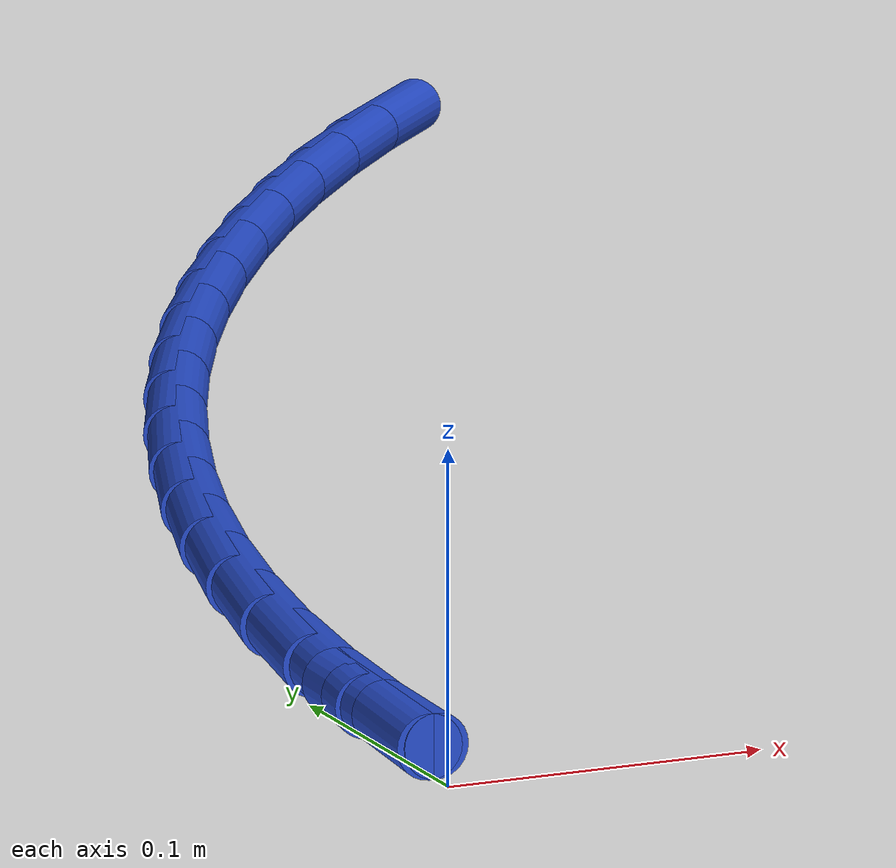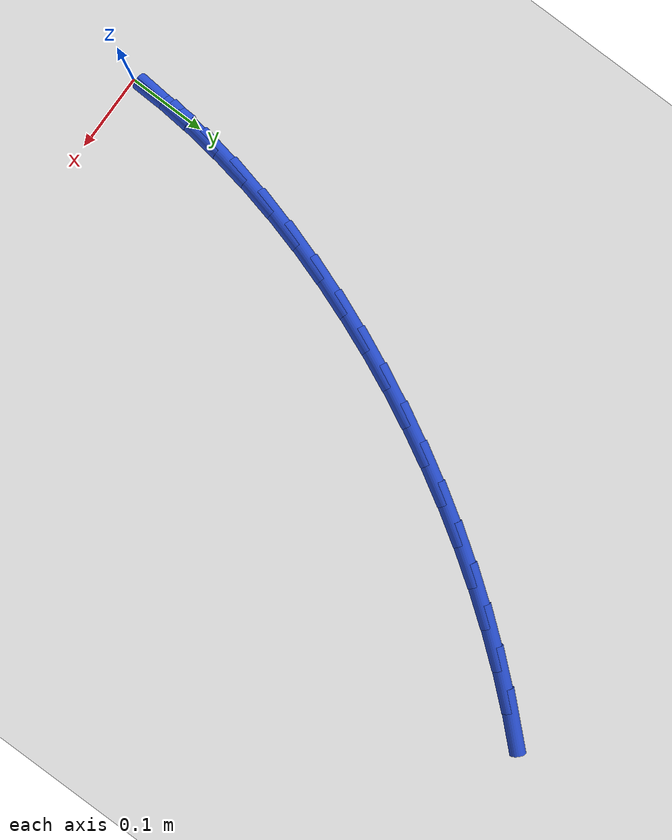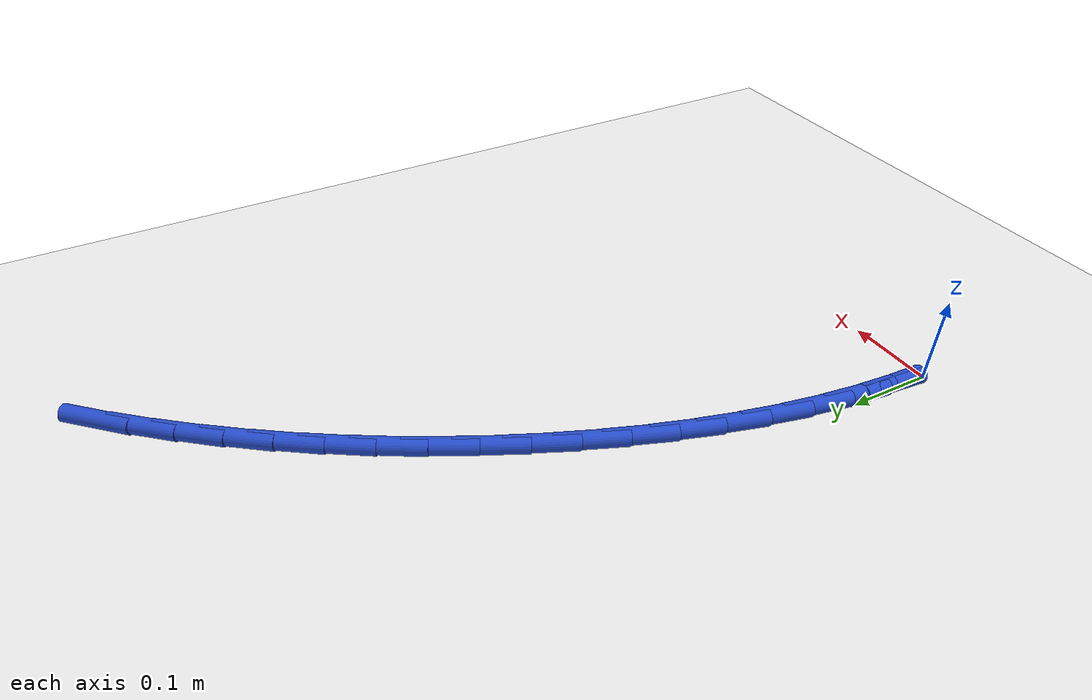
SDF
<sdf version="1.6">
 <world name="default">
  <model name="ground_plane">
   <static>1</static>
   <link name="link">
    <collision name="collision">
     <geometry><plane><normal>0 0 1</normal><size>100 100</size></plane></geometry>
     <surface><friction><ode><mu>100</mu><mu2>50</mu2></ode></friction></surface>
    </collision>
    <visual name="visual">
     <cast_shadows>0</cast_shadows>
     <geometry><plane><normal>0 0 1</normal><size>100 100</size></plane></geometry>
     <material>
      <script><uri>file://media/materials/scripts/gazebo.material</uri><name>Gazebo/WhiteGlow</name></script>
     </material>
    </visual>
   </link>
  </model>
  <model name="line">
   <link name="link_1">
    <pose>0.0015002505944763317 0.04877072796237831 0.01 0 1.57 1.4877429851813693</pose>
    <collision name="collision">
     <geometry><cylinder><radius>0.01</radius><length>0.08</length></cylinder></geometry>
    </collision>
    <visual name="visual">
     <material>
      <script><name>Gazebo/Blue</name><uri>file://media/materials/scripts/gazebo.material</uri></script>
     </material>
     <geometry><cylinder><radius>0.01</radius><length>0.08</length></cylinder></geometry>
    </visual>
   </link>
   <link name="link_2">
    <pose>0.005549995147745127 0.09741932740024425 0.01 0 1.57 1.437531070462646</pose>
    <collision name="collision">
     <geometry><cylinder><radius>0.01</radius><length>0.08</length></cylinder></geometry>
    </collision>
    <visual name="visual">
     <material>
      <script><name>Gazebo/Blue</name><uri>file://media/materials/scripts/gazebo.material</uri></script>
     </material>
     <geometry><cylinder><radius>0.01</radius><length>0.08</length></cylinder></geometry>
    </visual>
   </link>
   <link name="link_3">
    <pose>0.012051817081749808 0.14591873739414 0.01 0 1.57 1.3895318751148384</pose>
    <collision name="collision">
     <geometry><cylinder><radius>0.01</radius><length>0.08</length></cylinder></geometry>
    </collision>
    <visual name="visual">
     <material>
      <script><name>Gazebo/Blue</name><uri>file://media/materials/scripts/gazebo.material</uri></script>
     </material>
     <geometry><cylinder><radius>0.01</radius><length>0.08</length></cylinder></geometry>
    </visual>
   </link>
   <link name="link_4">
    <pose>0.02090829981843374 0.19424189702460748 0.01 0 1.57 1.3438170179797084</pose>
    <collision name="collision">
     <geometry><cylinder><radius>0.01</radius><length>0.08</length></cylinder></geometry>
    </collision>
    <visual name="visual">
     <material>
      <script><name>Gazebo/Blue</name><uri>file://media/materials/scripts/gazebo.material</uri></script>
     </material>
     <geometry><cylinder><radius>0.01</radius><length>0.08</length></cylinder></geometry>
    </visual>
   </link>
   <link name="link_5">
    <pose>0.032022026779740295 0.24236174537218888 0.01 0 1.57 1.3004132527795733</pose>
    <collision name="collision">
     <geometry><cylinder><radius>0.01</radius><length>0.08</length></cylinder></geometry>
    </collision>
    <visual name="visual">
     <material>
      <script><name>Gazebo/Blue</name><uri>file://media/materials/scripts/gazebo.material</uri></script>
     </material>
     <geometry><cylinder><radius>0.01</radius><length>0.08</length></cylinder></geometry>
    </visual>
   </link>
   <link name="link_6">
    <pose>0.04529558138761289 0.29025122151742644 0.01 0 1.57 1.2593097391518369</pose>
    <collision name="collision">
     <geometry><cylinder><radius>0.01</radius><length>0.08</length></cylinder></geometry>
    </collision>
    <visual name="visual">
     <material>
      <script><name>Gazebo/Blue</name><uri>file://media/materials/scripts/gazebo.material</uri></script>
     </material>
     <geometry><cylinder><radius>0.01</radius><length>0.08</length></cylinder></geometry>
    </visual>
   </link>
   <link name="link_7">
    <pose>0.06063154706399483 0.337883264540862 0.01 0 1.57 1.2204654533270505</pose>
    <collision name="collision">
     <geometry><cylinder><radius>0.01</radius><length>0.08</length></cylinder></geometry>
    </collision>
    <visual name="visual">
     <material>
      <script><name>Gazebo/Blue</name><uri>file://media/materials/scripts/gazebo.material</uri></script>
     </material>
     <geometry><cylinder><radius>0.01</radius><length>0.08</length></cylinder></geometry>
    </visual>
   </link>
   <link name="link_8">
    <pose>0.07793250723082955 0.3852308135230379 0.01 0 1.57 1.1837741862525684</pose>
    <collision name="collision">
     <geometry><cylinder><radius>0.01</radius><length>0.08</length></cylinder></geometry>
    </collision>
    <visual name="visual">
     <material>
      <script><name>Gazebo/Blue</name><uri>file://media/materials/scripts/gazebo.material</uri></script>
     </material>
     <geometry><cylinder><radius>0.01</radius><length>0.08</length></cylinder></geometry>
    </visual>
   </link>
   <link name="link_9">
    <pose>0.09710231904066233 0.4322642771726343 0.01 0 1.57 1.1483401596776046</pose>
    <collision name="collision">
     <geometry><cylinder><radius>0.01</radius><length>0.08</length></cylinder></geometry>
    </collision>
    <visual name="visual">
     <material>
      <script><name>Gazebo/Blue</name><uri>file://media/materials/scripts/gazebo.material</uri></script>
     </material>
     <geometry><cylinder><radius>0.01</radius><length>0.08</length></cylinder></geometry>
    </visual>
   </link>
   <link name="link_10">
    <pose>0.11806890477209978 0.47890625682230775 0.01 0 1.57 1.1132798120705825</pose>
    <collision name="collision">
     <geometry><cylinder><radius>0.01</radius><length>0.08</length></cylinder></geometry>
    </collision>
    <visual name="visual">
     <material>
      <script><name>Gazebo/Blue</name><uri>file://media/materials/scripts/gazebo.material</uri></script>
     </material>
     <geometry><cylinder><radius>0.01</radius><length>0.08</length></cylinder></geometry>
    </visual>
   </link>
   <link name="link_11">
    <pose>0.14078166126628136 0.5250366927987722 0.01 0 1.57 1.0783809923927883</pose>
    <collision name="collision">
     <geometry><cylinder><radius>0.01</radius><length>0.08</length></cylinder></geometry>
    </collision>
    <visual name="visual">
     <material>
      <script><name>Gazebo/Blue</name><uri>file://media/materials/scripts/gazebo.material</uri></script>
     </material>
     <geometry><cylinder><radius>0.01</radius><length>0.08</length></cylinder></geometry>
    </visual>
   </link>
   <link name="link_12">
    <pose>0.16519073887445251 0.5705340285181951 0.01 0 1.57 1.0434617121505405</pose>
    <collision name="collision">
     <geometry><cylinder><radius>0.01</radius><length>0.08</length></cylinder></geometry>
    </collision>
    <visual name="visual">
     <material>
      <script><name>Gazebo/Blue</name><uri>file://media/materials/scripts/gazebo.material</uri></script>
     </material>
     <geometry><cylinder><radius>0.01</radius><length>0.08</length></cylinder></geometry>
    </visual>
   </link>
   <link name="link_13">
    <pose>0.19124628794785878 0.6152767073967439 0.01 0 1.57 1.0083436608396281</pose>
    <collision name="collision">
     <geometry><cylinder><radius>0.01</radius><length>0.08</length></cylinder></geometry>
    </collision>
    <visual name="visual">
     <material>
      <script><name>Gazebo/Blue</name><uri>file://media/materials/scripts/gazebo.material</uri></script>
     </material>
     <geometry><cylinder><radius>0.01</radius><length>0.08</length></cylinder></geometry>
    </visual>
   </link>
   <link name="link_14">
    <pose>0.21889845883774575 0.6591431728505865 0.01 0 1.57 0.9728507419246204</pose>
    <collision name="collision">
     <geometry><cylinder><radius>0.01</radius><length>0.08</length></cylinder></geometry>
    </collision>
    <visual name="visual">
     <material>
      <script><name>Gazebo/Blue</name><uri>file://media/materials/scripts/gazebo.material</uri></script>
     </material>
     <geometry><cylinder><radius>0.01</radius><length>0.08</length></cylinder></geometry>
    </visual>
   </link>
   <link name="link_15">
    <pose>0.24809740189535898 0.7020118682958909 0.01 0 1.57 0.9368078074004589</pose>
    <collision name="collision">
     <geometry><cylinder><radius>0.01</radius><length>0.08</length></cylinder></geometry>
    </collision>
    <visual name="visual">
     <material>
      <script><name>Gazebo/Blue</name><uri>file://media/materials/scripts/gazebo.material</uri></script>
     </material>
     <geometry><cylinder><radius>0.01</radius><length>0.08</length></cylinder></geometry>
    </visual>
   </link>
   <link name="link_16">
    <pose>0.278793267471944 0.7437612371488239 0.01 0 1.57 0.9000396400433698</pose>
    <collision name="collision">
     <geometry><cylinder><radius>0.01</radius><length>0.08</length></cylinder></geometry>
    </collision>
    <visual name="visual">
     <material>
      <script><name>Gazebo/Blue</name><uri>file://media/materials/scripts/gazebo.material</uri></script>
     </material>
     <geometry><cylinder><radius>0.01</radius><length>0.08</length></cylinder></geometry>
    </visual>
   </link>
   <link name="link_17">
    <pose>0.31093620591874627 0.7842697228255541 0.01 0 1.57 0.8623702464824908</pose>
    <collision name="collision">
     <geometry><cylinder><radius>0.01</radius><length>0.08</length></cylinder></geometry>
    </collision>
    <visual name="visual">
     <material>
      <script><name>Gazebo/Blue</name><uri>file://media/materials/scripts/gazebo.material</uri></script>
     </material>
     <geometry><cylinder><radius>0.01</radius><length>0.08</length></cylinder></geometry>
    </visual>
   </link>
   <link name="link_18">
    <pose>0.3444763675870114 0.8234157687422484 0.01 0 1.57 0.8236225436384036</pose>
    <collision name="collision">
     <geometry><cylinder><radius>0.01</radius><length>0.08</length></cylinder></geometry>
    </collision>
    <visual name="visual">
     <material>
      <script><name>Gazebo/Blue</name><uri>file://media/materials/scripts/gazebo.material</uri></script>
     </material>
     <geometry><cylinder><radius>0.01</radius><length>0.08</length></cylinder></geometry>
    </visual>
   </link>
   <link name="link_151">
    <pose>0.0015273240693186203 0.04875948582559399 0.01 0 1.57 1.5394829358530155</pose>
    <collision name="collision">
     <geometry><cylinder><radius>0.01</radius><length>0.08</length></cylinder></geometry>
    </collision>
    <visual name="visual">
     <material>
      <script><name>Gazebo/Blue</name><uri>file://media/materials/scripts/gazebo.material</uri></script>
     </material>
     <geometry><cylinder><radius>0.01</radius><length>0.08</length></cylinder></geometry>
    </visual>
   </link>
  </model>
 </world>
</sdf>
